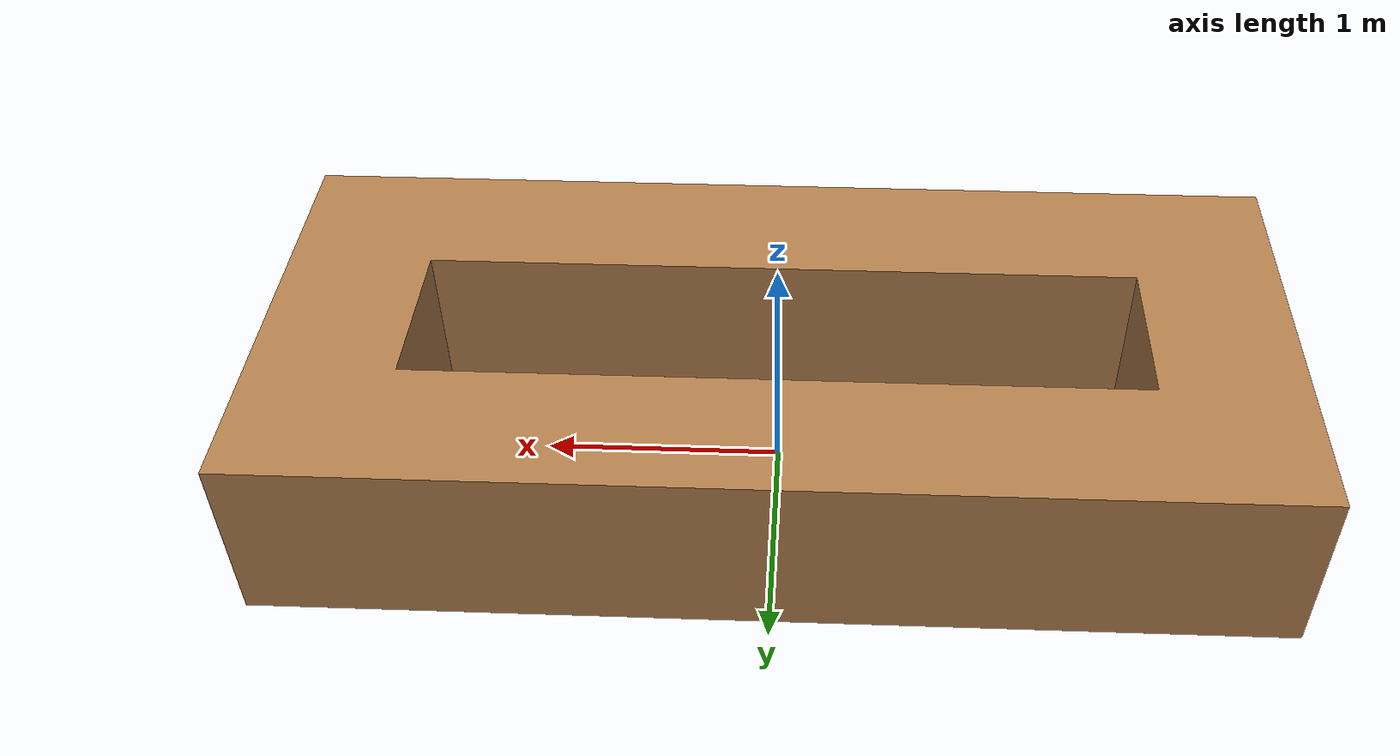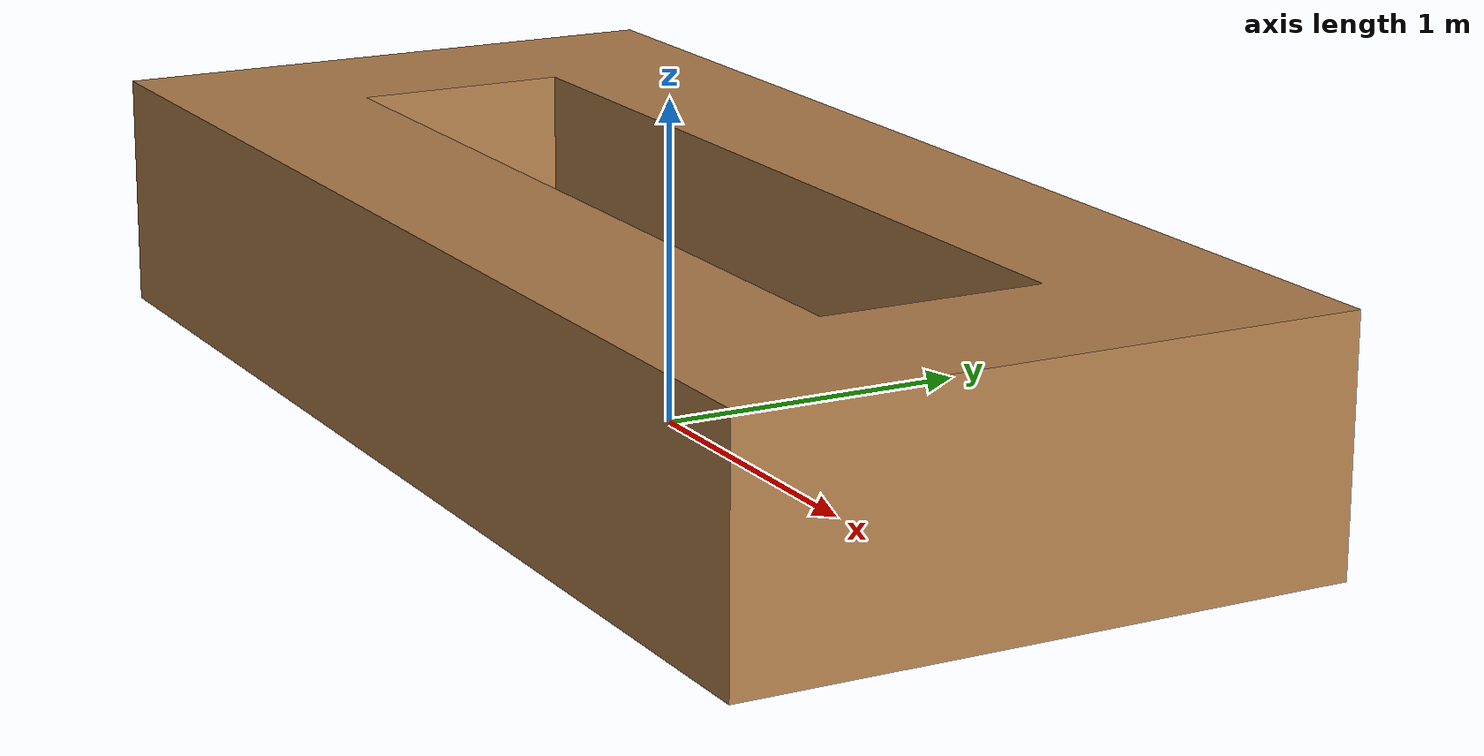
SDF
<sdf version='1.7'>
  <model name='Officedesk_B'>
    <link name='Officedesk_B'>
      <inertial>
        <pose>0 0 0.375 0 -0 0</pose>
        <mass>4294.1</mass>
        <inertia>
          <ixx>1830</ixx>
          <ixy>7.3506e-14</ixy>
          <ixz>-9.0195e-14</ixz>
          <iyy>7468.7</iyy>
          <iyz>-4.9057e-14</iyz>
          <izz>8896.1</izz>
        </inertia>
      </inertial>
      <collision name='Officedesk_B_collision'>
        <pose>0 0 0 0 -0 0</pose>
        <geometry>
          <mesh>
            <scale>1 1 1</scale>
            <uri>model://Officedesk_B/meshes/Officedesk_B.STL</uri>
          </mesh>
        </geometry>
      </collision>
      <visual name='Officedesk_B_visual'>
        <pose>0 0 0 0 -0 0</pose>
        <geometry>
          <mesh>
            <scale>1 1 1</scale>
            <uri>model://Officedesk_B/meshes/Officedesk_B.STL</uri>
          </mesh>
        </geometry>
        <material>
          <script>
            <uri>file://media/materials/scripts/gazebo.material</uri>
            <name>Gazebo/Wood</name>
          </script>
        </material>
      </visual>
    </link>
  </model>
</sdf>
